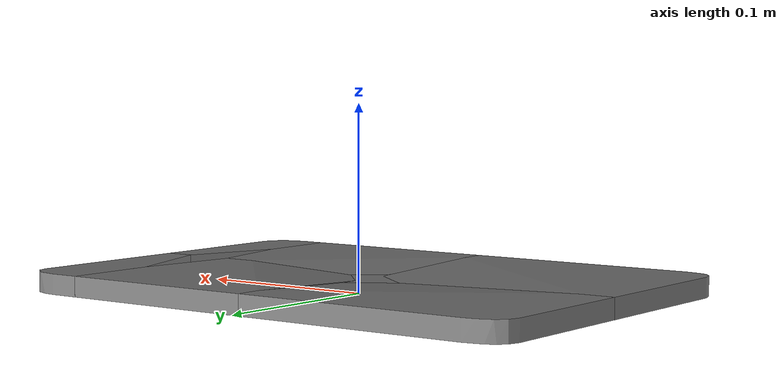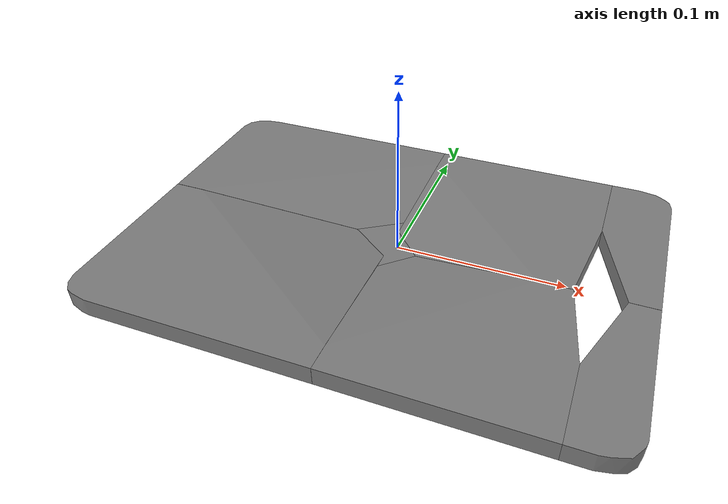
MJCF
<mujoco model="chopping_board2">
  <asset>
    <mesh file="../../meshes/train/chopping_board2/simple_mesh.stl" name="chopping_board2_mesh" scale="1 1 1"/>
    <mesh file="../../meshes/train/chopping_board2/chopping_board2_hull_1.stl" name="chopping_board2_hull_mesh_1" scale="1 1 1"/>
    <mesh file="../../meshes/train/chopping_board2/chopping_board2_hull_2.stl" name="chopping_board2_hull_mesh_2" scale="1 1 1"/>
    <mesh file="../../meshes/train/chopping_board2/chopping_board2_hull_3.stl" name="chopping_board2_hull_mesh_3" scale="1 1 1"/>
    <mesh file="../../meshes/train/chopping_board2/chopping_board2_hull_4.stl" name="chopping_board2_hull_mesh_4" scale="1 1 1"/>
    <mesh file="../../meshes/train/chopping_board2/chopping_board2_hull_5.stl" name="chopping_board2_hull_mesh_5" scale="1 1 1"/>
    <mesh file="../../meshes/train/chopping_board2/chopping_board2_hull_6.stl" name="chopping_board2_hull_mesh_6" scale="1 1 1"/>
  </asset>
  <worldbody>
    <body>
      <body name="object">
        <geom pos="0 0 0" mesh="chopping_board2_mesh" type="mesh" contype="0" conaffinity="0" group="1"/>
        <geom pos="0 0 0" mesh="chopping_board2_hull_mesh_1" type="mesh" margin="0.001" solimp="0.998 0.998 0.001" solref="0.001 1" density="2000" friction="0.95 0.3 0.1" group="0" condim="4"/>
        <geom pos="0 0 0" mesh="chopping_board2_hull_mesh_2" type="mesh" margin="0.001" solimp="0.998 0.998 0.001" solref="0.001 1" density="2000" friction="0.95 0.3 0.1" group="0" condim="4"/>
        <geom pos="0 0 0" mesh="chopping_board2_hull_mesh_3" type="mesh" margin="0.001" solimp="0.998 0.998 0.001" solref="0.001 1" density="2000" friction="0.95 0.3 0.1" group="0" condim="4"/>
        <geom pos="0 0 0" mesh="chopping_board2_hull_mesh_4" type="mesh" margin="0.001" solimp="0.998 0.998 0.001" solref="0.001 1" density="2000" friction="0.95 0.3 0.1" group="0" condim="4"/>
        <geom pos="0 0 0" mesh="chopping_board2_hull_mesh_5" type="mesh" margin="0.001" solimp="0.998 0.998 0.001" solref="0.001 1" density="2000" friction="0.95 0.3 0.1" group="0" condim="4"/>
        <geom pos="0 0 0" mesh="chopping_board2_hull_mesh_6" type="mesh" margin="0.001" solimp="0.998 0.998 0.001" solref="0.001 1" density="2000" friction="0.95 0.3 0.1" group="0" condim="4"/>
      </body>
      <site rgba="0 0 0 0" size="0.005" pos="0 0 -0.001" name="bottom_site"/>
      <site rgba="0 0 0 0" size="0.005" pos="0 0 0.02" name="top_site"/>
      <site rgba="0 0 0 0" size="0.005" pos="0.0375 0.02 0" name="horizontal_radius_site"/>
    </body>
  </worldbody>
</mujoco>
